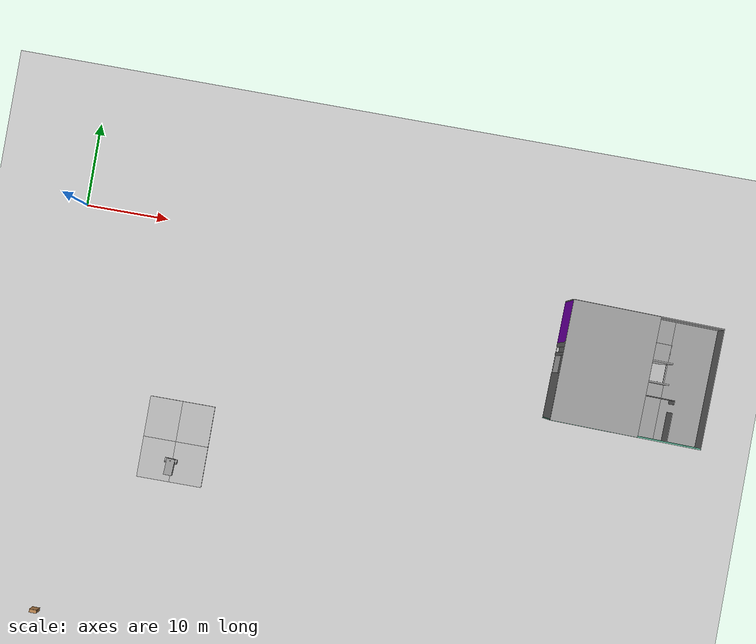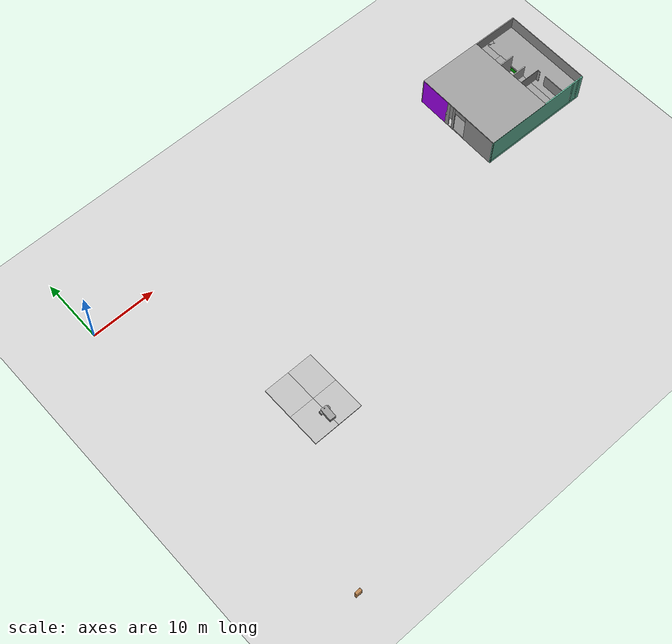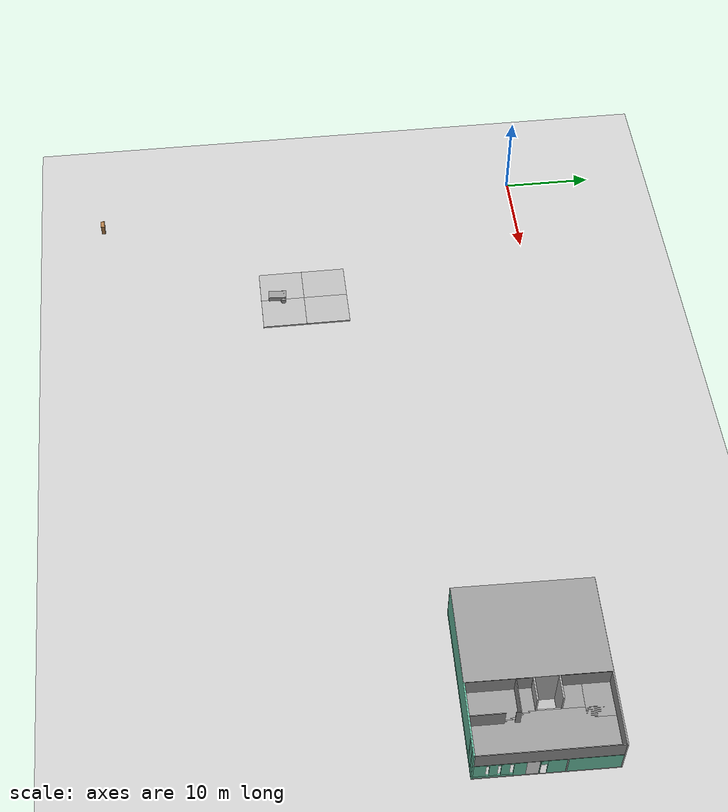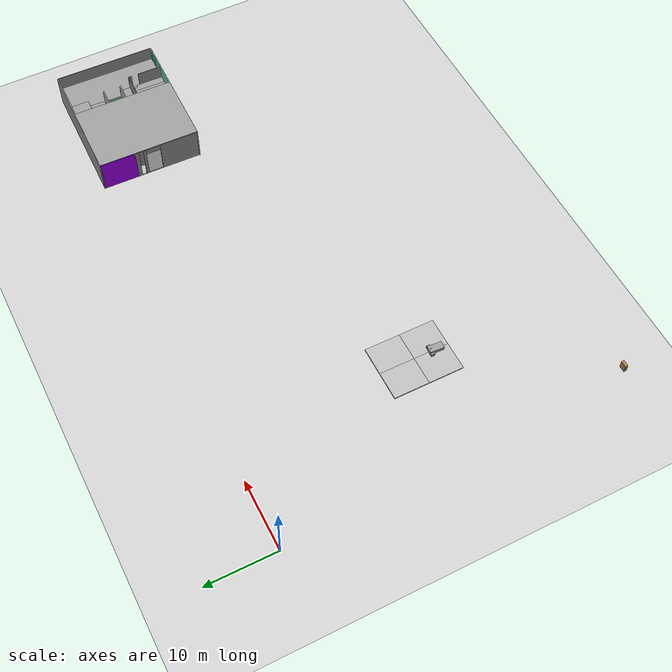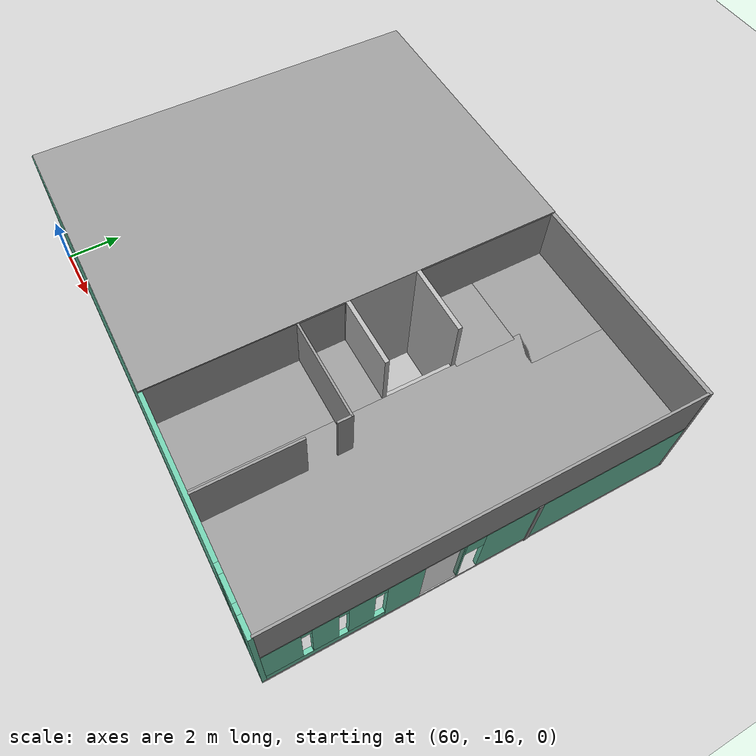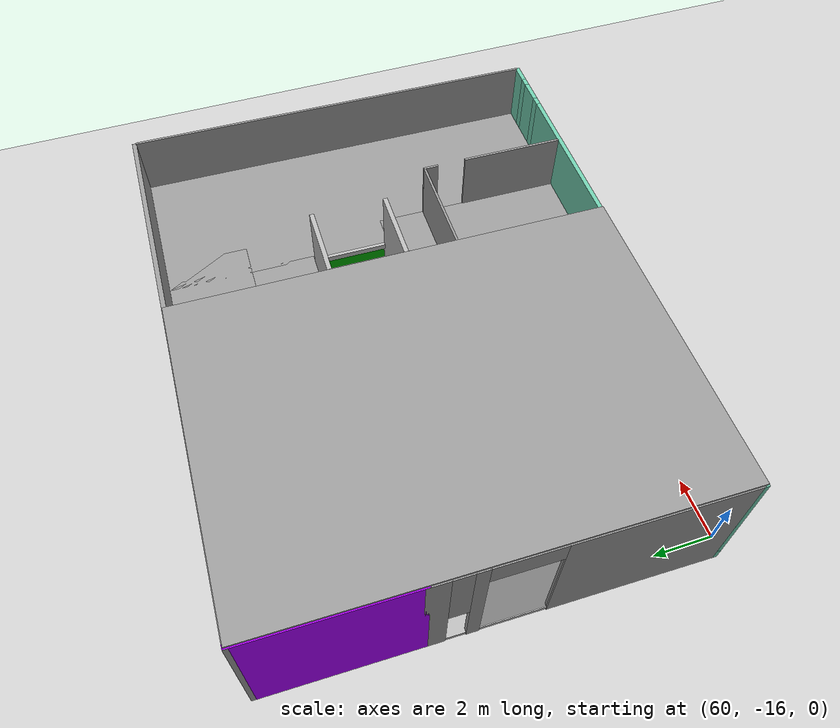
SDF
<sdf version="1.6">
 <world name="default">
  <light name="sun" type="directional">
   <pose>0 0 10 0 -0 0</pose>
   <diffuse>0.8 0.8 0.8 1</diffuse>
   <specular>0.2 0.2 0.2 1</specular>
   <attenuation>
    <range>1000</range>
    <constant>0.9</constant>
    <linear>0.01</linear>
    <quadratic>0.001</quadratic>
   </attenuation>
   <direction>-0.5 0.1 -0.9</direction>
  </light>
  <model name="ground_plane">
   <static>1</static>
   <link name="link">
    <collision name="collision">
     <geometry><plane><normal>0 0 1</normal><size>100 100</size></plane></geometry>
     <surface><friction><ode><mu>100</mu><mu2>50</mu2></ode></friction></surface>
    </collision>
    <visual name="visual">
     <cast_shadows>0</cast_shadows>
     <geometry><plane><normal>0 0 1</normal><size>100 100</size></plane></geometry>
     <material>
      <script><uri>file://media/materials/scripts/gazebo.material</uri><name>Gazebo/Grey</name></script>
     </material>
    </visual>
   </link>
  </model>
  <gravity>0 0 -9.8</gravity>
  <magnetic_field>6e-06 2.3e-05 -4.2e-05</magnetic_field>
  <atmosphere type="adiabatic"/>
  <physics name="default_physics" default="0" type="ode">
   <max_step_size>0.001</max_step_size>
   <real_time_factor>1</real_time_factor>
   <real_time_update_rate>1000</real_time_update_rate>
  </physics>
  <scene><ambient>0.4 0.4 0.4 1</ambient><background>0.7 0.7 0.7 1</background><shadows>1</shadows></scene>
  <audio><device>default</device></audio>
  <spherical_coordinates>
   <surface_model>EARTH_WGS84</surface_model>
   <latitude_deg>0</latitude_deg>
   <longitude_deg>0</longitude_deg>
   <elevation>0</elevation>
   <heading_deg>0</heading_deg>
  </spherical_coordinates>
  <model name="asphalt_plane">
   <static>1</static>
   <link name="link">
    <collision name="collision"><geometry><box><size>6.37484e-06 0 0.1</size></box></geometry></collision>
    <visual name="visual">
     <cast_shadows>0</cast_shadows>
     <geometry><box><size>6.37484e-06 0 0.1</size></box></geometry>
     <material>
      <script>
       <uri>model://asphalt_plane/materials/scripts</uri>
       <uri>model://asphalt_plane/materials/textures</uri>
       <name>vrc/asphalt</name>
      </script>
     </material>
    </visual>
   </link>
   <pose>-4.06776 -4.60958 0 0 -0 0</pose>
  </model>
  <model name="bookshelf">
   <static>1</static>
   <link name="link">
    <inertial><mass>1</mass></inertial>
    <collision name="back">
     <pose>0 0.005 0.6 0 -0 0</pose>
     <geometry><box><size>0.9 0.01 1.2</size></box></geometry>
    </collision>
    <visual name="visual1">
     <pose>0 0.005 0.6 0 -0 0</pose>
     <geometry><box><size>0.9 0.01 1.2</size></box></geometry>
     <material>
      <script><uri>file://media/materials/scripts/gazebo.material</uri><name>Gazebo/Wood</name></script>
     </material>
    </visual>
    <collision name="left_side">
     <pose>0.45 -0.195 0.6 0 -0 0</pose>
     <geometry><box><size>0.02 0.4 1.2</size></box></geometry>
    </collision>
    <visual name="visual2">
     <pose>0.45 -0.195 0.6 0 -0 0</pose>
     <geometry><box><size>0.02 0.4 1.2</size></box></geometry>
     <material>
      <script><uri>file://media/materials/scripts/gazebo.material</uri><name>Gazebo/Wood</name></script>
     </material>
    </visual>
    <collision name="right_side">
     <pose>-0.45 -0.195 0.6 0 -0 0</pose>
     <geometry><box><size>0.02 0.4 1.2</size></box></geometry>
    </collision>
    <visual name="visual3">
     <pose>-0.45 -0.195 0.6 0 -0 0</pose>
     <geometry><box><size>0.02 0.4 1.2</size></box></geometry>
     <material>
      <script><uri>file://media/materials/scripts/gazebo.material</uri><name>Gazebo/Wood</name></script>
     </material>
    </visual>
    <collision name="bottom">
     <pose>0 -0.195 0.03 0 -0 0</pose>
     <geometry><box><size>0.88 0.4 0.06</size></box></geometry>
    </collision>
    <visual name="visual4">
     <pose>0 -0.195 0.03 0 -0 0</pose>
     <geometry><box><size>0.88 0.4 0.06</size></box></geometry>
     <material>
      <script><uri>file://media/materials/scripts/gazebo.material</uri><name>Gazebo/Wood</name></script>
     </material>
    </visual>
    <collision name="top">
     <pose>0 -0.195 1.19 0 -0 0</pose>
     <geometry><box><size>0.88 0.4 0.02</size></box></geometry>
    </collision>
    <visual name="visual5">
     <pose>0 -0.195 1.19 0 -0 0</pose>
     <geometry><box><size>0.88 0.4 0.02</size></box></geometry>
     <material>
      <script><uri>file://media/materials/scripts/gazebo.material</uri><name>Gazebo/Wood</name></script>
     </material>
    </visual>
    <collision name="low_shelf">
     <pose>0 -0.195 0.43 0 -0 0</pose>
     <geometry><box><size>0.88 0.4 0.02</size></box></geometry>
    </collision>
    <visual name="visual6">
     <pose>0 -0.195 0.43 0 -0 0</pose>
     <geometry><box><size>0.88 0.4 0.02</size></box></geometry>
     <material>
      <script><uri>file://media/materials/scripts/gazebo.material</uri><name>Gazebo/Wood</name></script>
     </material>
    </visual>
    <collision name="high_shelf">
     <pose>0 -0.195 0.8 0 -0 0</pose>
     <geometry><box><size>0.88 0.4 0.02</size></box></geometry>
    </collision>
    <visual name="visual7">
     <pose>0 -0.195 0.8 0 -0 0</pose>
     <geometry><box><size>0.88 0.4 0.02</size></box></geometry>
     <material>
      <script><uri>file://media/materials/scripts/gazebo.material</uri><name>Gazebo/Wood</name></script>
     </material>
    </visual>
   </link>
   <pose>2.45 -49.5295 0 0 -0 0</pose>
  </model>
  <model name="follower_vehicle">
   <pose>15.5976 -29.5069 0.425004 0 -1.4e-05 1.52143</pose>
   <link name="chassis">
    <pose>-0.151427 -0 0.175 0 -0 0</pose>
    <inertial>
     <mass>1.14395</mass>
     <inertia>
      <ixx>0.126164</ixx>
      <ixy>0</ixy>
      <ixz>0</ixz>
      <iyy>0.416519</iyy>
      <iyz>0</iyz>
      <izz>0.481014</izz>
     </inertia>
    </inertial>
    <visual name="visual">
     <geometry><box><size>2.01142 1 0.568726</size></box></geometry>
     <material>
      <script><uri>file://media/materials/scripts/gazebo.material</uri><name>Gazebo/Grey</name></script>
     </material>
    </visual>
    <collision name="collision">
     <geometry><box><size>2.01142 1 0.568726</size></box></geometry>
     <surface>
      <friction><ode><mu>1</mu><mu2>1</mu2><fdir1>0 0 0</fdir1><slip1>0</slip1><slip2>0</slip2></ode></friction>
      <bounce><restitution_coefficient>0</restitution_coefficient><threshold>1e+06</threshold></bounce>
      <contact>
       <collide_without_contact>0</collide_without_contact>
       <collide_without_contact_bitmask>1</collide_without_contact_bitmask>
       <collide_bitmask>1</collide_bitmask>
       <ode>
        <soft_cfm>0</soft_cfm>
        <soft_erp>0.2</soft_erp>
        <kp>1e+13</kp>
        <kd>1</kd>
        <max_vel>0.01</max_vel>
        <min_depth>0</min_depth>
       </ode>
      </contact>
     </surface>
    </collision>
   </link>
   <link name="wheel_1">
    <pose>0.554283 0.625029 -0.025 1.5707 -0 0</pose>
    <inertial>
     <mass>2</mass>
     <inertia><ixx>0.145833</ixx><ixy>0</ixy><ixz>0</ixz><iyy>0.145833</iyy><iyz>0</iyz><izz>0.125</izz></inertia>
    </inertial>
    <visual name="visual">
     <geometry><cylinder><radius>0.3</radius><length>0.25</length></cylinder></geometry>
     <material>
      <script><uri>file://media/materials/scripts/gazebo.material</uri><name>Gazebo/Grey</name></script>
     </material>
    </visual>
    <collision name="collision">
     <geometry><cylinder><radius>0.3</radius><length>0.25</length></cylinder></geometry>
     <surface>
      <friction><ode><mu>1</mu><mu2>1</mu2><fdir1>0 0 0</fdir1><slip1>0</slip1><slip2>0</slip2></ode></friction>
      <bounce><restitution_coefficient>0</restitution_coefficient><threshold>1e+06</threshold></bounce>
      <contact>
       <collide_without_contact>0</collide_without_contact>
       <collide_without_contact_bitmask>1</collide_without_contact_bitmask>
       <collide_bitmask>1</collide_bitmask>
       <ode>
        <soft_cfm>0</soft_cfm>
        <soft_erp>0.2</soft_erp>
        <kp>1e+13</kp>
        <kd>1</kd>
        <max_vel>0.01</max_vel>
        <min_depth>0</min_depth>
       </ode>
      </contact>
     </surface>
    </collision>
   </link>
   <link name="wheel_2">
    <pose>0.554282 -0.625029 -0.025 1.5707 -0 0</pose>
    <inertial>
     <mass>2</mass>
     <inertia><ixx>0.145833</ixx><ixy>0</ixy><ixz>0</ixz><iyy>0.145833</iyy><iyz>0</iyz><izz>0.125</izz></inertia>
    </inertial>
    <visual name="visual">
     <geometry><cylinder><radius>0.3</radius><length>0.25</length></cylinder></geometry>
     <material>
      <script><uri>file://media/materials/scripts/gazebo.material</uri><name>Gazebo/Grey</name></script>
     </material>
    </visual>
    <collision name="collision">
     <geometry><cylinder><radius>0.3</radius><length>0.25</length></cylinder></geometry>
     <surface>
      <friction><ode><mu>1</mu><mu2>1</mu2><fdir1>0 0 0</fdir1><slip1>0</slip1><slip2>0</slip2></ode></friction>
      <bounce><restitution_coefficient>0</restitution_coefficient><threshold>1e+06</threshold></bounce>
      <contact>
       <collide_without_contact>0</collide_without_contact>
       <collide_without_contact_bitmask>1</collide_without_contact_bitmask>
       <collide_bitmask>1</collide_bitmask>
       <ode>
        <soft_cfm>0</soft_cfm>
        <soft_erp>0.2</soft_erp>
        <kp>1e+13</kp>
        <kd>1</kd>
        <max_vel>0.01</max_vel>
        <min_depth>0</min_depth>
       </ode>
      </contact>
     </surface>
    </collision>
   </link>
   <link name="caster">
    <pose>-0.957138 -0 -0.125 0 -0 0</pose>
    <inertial>
     <mass>1</mass>
     <inertia><ixx>0.1</ixx><ixy>0</ixy><ixz>0</ixz><iyy>0.1</iyy><iyz>0</iyz><izz>0.1</izz></inertia>
    </inertial>
    <visual name="visual">
     <geometry><sphere><radius>0.2</radius></sphere></geometry>
     <material>
      <script><uri>file://media/materials/scripts/gazebo.material</uri><name>Gazebo/Grey</name></script>
     </material>
    </visual>
    <collision name="collision">
     <geometry><sphere><radius>0.2</radius></sphere></geometry>
     <surface>
      <friction><ode><mu>1</mu><mu2>1</mu2><fdir1>0 0 0</fdir1><slip1>0</slip1><slip2>0</slip2></ode></friction>
      <bounce><restitution_coefficient>0</restitution_coefficient><threshold>1e+06</threshold></bounce>
      <contact>
       <collide_without_contact>0</collide_without_contact>
       <collide_without_contact_bitmask>1</collide_without_contact_bitmask>
       <collide_bitmask>1</collide_bitmask>
       <ode>
        <soft_cfm>0</soft_cfm>
        <soft_erp>0.2</soft_erp>
        <kp>1e+13</kp>
        <kd>1</kd>
        <max_vel>0.01</max_vel>
        <min_depth>0</min_depth>
       </ode>
      </contact>
     </surface>
    </collision>
   </link>
   <model name="depth_camera">
    <link name="link">
     <pose>0.05 0.05 0.05 0 -0 0</pose>
     <inertial>
      <mass>0.1</mass>
      <inertia>
       <ixx>0.000166667</ixx>
       <iyy>0.000166667</iyy>
       <izz>0.000166667</izz>
       <ixy>0</ixy>
       <ixz>0</ixz>
       <iyz>0</iyz>
      </inertia>
     </inertial>
     <collision name="collision"><geometry><box><size>0.1 0.1 0.1</size></box></geometry></collision>
     <visual name="visual"><geometry><box><size>0.1 0.1 0.1</size></box></geometry></visual>
     <sensor name="camera" type="depth">
      <camera name="depth">
       <horizontal_fov>1.047</horizontal_fov>
       <image><width>320</width><height>240</height></image>
       <clip><near>0.1</near><far>100</far></clip>
      </camera>
      <always_on>1</always_on>
      <update_rate>30</update_rate>
      <visualize>1</visualize>
     </sensor>
    </link>
    <pose>0.569632 -0.03223 0.502056 0 -0 0</pose>
   </model>
   <joint name="chassis_wheel_1_revolute" type="revolute">
    <parent>chassis</parent>
    <child>wheel_1</child>
    <axis>
     <xyz>0 0 1</xyz>
     <use_parent_model_frame>0</use_parent_model_frame>
     <limit>
      <lower>-1.79769e+308</lower>
      <upper>1.79769e+308</upper>
      <effort>-1</effort>
      <velocity>-1</velocity>
     </limit>
     <dynamics>
      <spring_reference>0</spring_reference>
      <spring_stiffness>0</spring_stiffness>
      <damping>0</damping>
      <friction>0</friction>
     </dynamics>
    </axis>
    <physics>
     <ode><limit><cfm>0</cfm><erp>0.2</erp></limit><suspension><cfm>0</cfm><erp>0.2</erp></suspension></ode>
    </physics>
   </joint>
   <joint name="chassis_wheel_2_revolute" type="revolute">
    <parent>chassis</parent>
    <child>wheel_2</child>
    <axis>
     <xyz>0 0 1</xyz>
     <use_parent_model_frame>0</use_parent_model_frame>
     <limit>
      <lower>-1.79769e+308</lower>
      <upper>1.79769e+308</upper>
      <effort>-1</effort>
      <velocity>-1</velocity>
     </limit>
     <dynamics>
      <spring_reference>0</spring_reference>
      <spring_stiffness>0</spring_stiffness>
      <damping>0</damping>
      <friction>0</friction>
     </dynamics>
    </axis>
    <physics>
     <ode><limit><cfm>0</cfm><erp>0.2</erp></limit><suspension><cfm>0</cfm><erp>0.2</erp></suspension></ode>
    </physics>
   </joint>
   <joint name="chassis_caster_ball" type="ball">
    <parent>chassis</parent>
    <child>caster</child>
    <physics>
     <ode><limit><cfm>0</cfm><erp>0.2</erp></limit><suspension><cfm>0</cfm><erp>0.2</erp></suspension></ode>
    </physics>
   </joint>
   <joint name="chassis_depth_camera_link_fixed" type="fixed">
    <parent>chassis</parent>
    <child>depth_camera::link</child>
    <physics>
     <ode><limit><cfm>0</cfm><erp>0.2</erp></limit><suspension><cfm>0</cfm><erp>0.2</erp></suspension></ode>
    </physics>
   </joint>
   <static>0</static>
   <plugin name="follower" filename="libFollowerPlugin.so"/>
  </model>
  <model name="mud_box">
   <static>1</static>
   <link name="link">
    <collision name="collision"><geometry><box><size>8 10 0.2</size></box></geometry></collision>
    <visual name="visual_1">
     <pose>-2 2.5 0 0 -0 0</pose>
     <cast_shadows>0</cast_shadows>
     <geometry><box><size>4 5 0.2</size></box></geometry>
     <material>
      <script>
       <uri>model://mud_box/materials/scripts</uri>
       <uri>model://mud_box/materials/textures</uri>
       <name>vrc/mud</name>
      </script>
     </material>
    </visual>
    <visual name="visual_2">
     <pose>2 2.5 0 0 -0 0</pose>
     <cast_shadows>0</cast_shadows>
     <geometry><box><size>4 5 0.2</size></box></geometry>
     <material>
      <script>
       <uri>model://mud_box/materials/scripts</uri>
       <uri>model://mud_box/materials/textures</uri>
       <name>vrc/mud</name>
      </script>
     </material>
    </visual>
    <visual name="visual_3">
     <pose>2 -2.5 0 0 -0 0</pose>
     <cast_shadows>0</cast_shadows>
     <geometry><box><size>4 5 0.2</size></box></geometry>
     <material>
      <script>
       <uri>model://mud_box/materials/scripts</uri>
       <uri>model://mud_box/materials/textures</uri>
       <name>vrc/mud</name>
      </script>
     </material>
    </visual>
    <visual name="visual_4">
     <pose>-2 -2.5 0 0 -0 0</pose>
     <cast_shadows>0</cast_shadows>
     <geometry><box><size>4 5 0.2</size></box></geometry>
     <material>
      <script>
       <uri>model://mud_box/materials/scripts</uri>
       <uri>model://mud_box/materials/textures</uri>
       <name>vrc/mud</name>
      </script>
     </material>
    </visual>
   </link>
   <pose>15.7215 -26.5767 0 0 -0 0</pose>
  </model>
  <model name="osrf_elevator">
   <link name="Wall_0">
    <pose>-7.17647 0.013004 0 0 -0 1.57174</pose>
    <visual name="Wall_0_Visual_0">
     <meta><layer>0</layer></meta>
     <pose>-8.72596 0 2.4385 0 -0 0</pose>
     <geometry><box><size>0.663656 0.15 4.877</size></box></geometry>
     <material>
      <script><uri>file://media/materials/scripts/gazebo.material</uri><name>Gazebo/Grey</name></script>
      <ambient>0.435294 0.796078 0.67451 1</ambient>
     </material>
    </visual>
    <collision name="Wall_0_Collision_0">
     <geometry><box><size>0.663656 0.15 4.877</size></box></geometry>
     <pose>-8.72596 0 2.4385 0 -0 0</pose>
    </collision>
    <visual name="Wall_0_Visual_1">
     <meta><layer>0</layer></meta>
     <pose>0.331828 0 0.25 0 -0 0</pose>
     <geometry><box><size>17.4519 0.15 0.5</size></box></geometry>
     <material>
      <script><uri>file://media/materials/scripts/gazebo.material</uri><name>Gazebo/Grey</name></script>
      <ambient>0.435294 0.796078 0.67451 1</ambient>
     </material>
    </visual>
    <collision name="Wall_0_Collision_1">
     <geometry><box><size>17.4519 0.15 0.5</size></box></geometry>
     <pose>0.331828 0 0.25 0 -0 0</pose>
    </collision>
    <visual name="Wall_0_Visual_2">
     <meta><layer>0</layer></meta>
     <pose>-7.67281 0 2.6885 0 -0 0</pose>
     <geometry><box><size>0.816657 0.15 4.377</size></box></geometry>
     <material>
      <script><uri>file://media/materials/scripts/gazebo.material</uri><name>Gazebo/Grey</name></script>
      <ambient>0.435294 0.796078 0.67451 1</ambient>
     </material>
    </visual>
    <collision name="Wall_0_Collision_2">
     <geometry><box><size>0.816657 0.15 4.377</size></box></geometry>
     <pose>-7.67281 0 2.6885 0 -0 0</pose>
    </collision>
    <visual name="Wall_0_Visual_3">
     <meta><layer>0</layer></meta>
     <pose>1.05709 0 2.6885 0 -0 0</pose>
     <geometry><box><size>16.0014 0.15 4.377</size></box></geometry>
     <material>
      <script><uri>file://media/materials/scripts/gazebo.material</uri><name>Gazebo/Grey</name></script>
      <ambient>0.435294 0.796078 0.67451 1</ambient>
     </material>
    </visual>
    <collision name="Wall_0_Collision_3">
     <geometry><box><size>16.0014 0.15 4.377</size></box></geometry>
     <pose>1.05709 0 2.6885 0 -0 0</pose>
    </collision>
    <visual name="Wall_0_Visual_4">
     <meta><layer>0</layer></meta>
     <pose>-8.23763 0 3.6885 0 -0 0</pose>
     <geometry><box><size>0.313 0.15 2.377</size></box></geometry>
     <material>
      <script><uri>file://media/materials/scripts/gazebo.material</uri><name>Gazebo/Grey</name></script>
      <ambient>0.435294 0.796078 0.67451 1</ambient>
     </material>
    </visual>
    <collision name="Wall_0_Collision_4">
     <geometry><box><size>0.313 0.15 2.377</size></box></geometry>
     <pose>-8.23763 0 3.6885 0 -0 0</pose>
    </collision>
    <visual name="Wall_0_Visual_5">
     <meta><layer>0</layer></meta>
     <pose>-7.10405 0 3.6885 0 -0 0</pose>
     <geometry><box><size>0.320861 0.15 2.377</size></box></geometry>
     <material>
      <script><uri>file://media/materials/scripts/gazebo.material</uri><name>Gazebo/Grey</name></script>
      <ambient>0.435294 0.796078 0.67451 1</ambient>
     </material>
    </visual>
    <collision name="Wall_0_Collision_5">
     <geometry><box><size>0.320861 0.15 2.377</size></box></geometry>
     <pose>-7.10405 0 3.6885 0 -0 0</pose>
    </collision>
   </link>
   <link name="Wall_10">
    <pose>3.11003 -4.9485 0 0 -0 0</pose>
    <visual name="Wall_10_Visual_0">
     <meta><layer>0</layer></meta>
     <pose>-1.73626 0 1.3715 0 -0 0</pose>
     <geometry><box><size>4.52747 0.15 2.743</size></box></geometry>
     <material>
      <script><uri>file://media/materials/scripts/gazebo.material</uri><name>Gazebo/Grey</name></script>
      <ambient>0 0.666667 0 1</ambient>
     </material>
    </visual>
    <collision name="Wall_10_Collision_0">
     <geometry><box><size>4.52747 0.15 2.743</size></box></geometry>
     <pose>-1.73626 0 1.3715 0 -0 0</pose>
    </collision>
    <visual name="Wall_10_Visual_1">
     <meta><layer>0</layer></meta>
     <pose>2.58694 0 1.3715 0 -0 0</pose>
     <geometry><box><size>2.82611 0.15 2.743</size></box></geometry>
     <material>
      <script><uri>file://media/materials/scripts/gazebo.material</uri><name>Gazebo/Grey</name></script>
      <ambient>0 0.666667 0 1</ambient>
     </material>
    </visual>
    <collision name="Wall_10_Collision_1">
     <geometry><box><size>2.82611 0.15 2.743</size></box></geometry>
     <pose>2.58694 0 1.3715 0 -0 0</pose>
    </collision>
    <visual name="Wall_10_Visual_2">
     <meta><layer>0</layer></meta>
     <pose>0.85068 0 2.3715 0 -0 0</pose>
     <geometry><box><size>0.646413 0.15 0.743</size></box></geometry>
     <material>
      <script><uri>file://media/materials/scripts/gazebo.material</uri><name>Gazebo/Grey</name></script>
      <ambient>0 0.666667 0 1</ambient>
     </material>
    </visual>
    <collision name="Wall_10_Collision_2">
     <geometry><box><size>0.646413 0.15 0.743</size></box></geometry>
     <pose>0.85068 0 2.3715 0 -0 0</pose>
    </collision>
   </link>
   <link name="Wall_14">
    <pose>1.83803 -6.9775 0 0 -0 1.5708</pose>
    <visual name="Wall_14_Visual_0">
     <meta><layer>0</layer></meta>
     <pose>-0.387674 0 1.3715 0 -0 0</pose>
     <geometry><box><size>3.41138 0.15 2.743</size></box></geometry>
     <material>
      <script><uri>file://media/materials/scripts/gazebo.material</uri><name>Gazebo/Grey</name></script>
      <ambient>1 1 1 1</ambient>
     </material>
    </visual>
    <collision name="Wall_14_Collision_0">
     <geometry><box><size>3.41138 0.15 2.743</size></box></geometry>
     <pose>-0.387674 0 1.3715 0 -0 0</pose>
    </collision>
    <visual name="Wall_14_Visual_1">
     <meta><layer>0</layer></meta>
     <pose>2.00133 0 1.3715 0 -0 0</pose>
     <geometry><box><size>0.184063 0.15 2.743</size></box></geometry>
     <material>
      <script><uri>file://media/materials/scripts/gazebo.material</uri><name>Gazebo/Grey</name></script>
      <ambient>1 1 1 1</ambient>
     </material>
    </visual>
    <collision name="Wall_14_Collision_1">
     <geometry><box><size>0.184063 0.15 2.743</size></box></geometry>
     <pose>2.00133 0 1.3715 0 -0 0</pose>
    </collision>
    <visual name="Wall_14_Visual_2">
     <meta><layer>0</layer></meta>
     <pose>1.61366 0 2.3715 0 -0 0</pose>
     <geometry><box><size>0.591285 0.15 0.743</size></box></geometry>
     <material>
      <script><uri>file://media/materials/scripts/gazebo.material</uri><name>Gazebo/Grey</name></script>
      <ambient>1 1 1 1</ambient>
     </material>
    </visual>
    <collision name="Wall_14_Collision_2">
     <geometry><box><size>0.591285 0.15 0.743</size></box></geometry>
     <pose>1.61366 0 2.3715 0 -0 0</pose>
    </collision>
   </link>
   <link name="Wall_16">
    <collision name="Wall_16_Collision">
     <geometry><box><size>5.12727 0.15 2.743</size></box></geometry>
     <pose>0 0 1.3715 0 -0 0</pose>
    </collision>
    <visual name="Wall_16_Visual">
     <meta><layer>0</layer></meta>
     <pose>0 0 1.3715 0 -0 0</pose>
     <geometry><box><size>5.12727 0.15 2.743</size></box></geometry>
     <material>
      <script><uri>file://media/materials/scripts/gazebo.material</uri><name>Gazebo/Grey</name></script>
      <ambient>1 1 1 1</ambient>
     </material>
    </visual>
    <pose>-4.68247 -1.4425 0 0 -0 0</pose>
   </link>
   <link name="Wall_17">
    <pose>-2.19097 -3.185 0 0 0 -1.56907</pose>
    <visual name="Wall_17_Visual_0">
     <meta><layer>0</layer></meta>
     <pose>-1.22855 0 1.3715 0 -0 0</pose>
     <geometry><box><size>1.17851 0.15 2.743</size></box></geometry>
     <material>
      <script><uri>file://media/materials/scripts/gazebo.material</uri><name>Gazebo/Grey</name></script>
      <ambient>1 1 1 1</ambient>
     </material>
    </visual>
    <collision name="Wall_17_Collision_0">
     <geometry><box><size>1.17851 0.15 2.743</size></box></geometry>
     <pose>-1.22855 0 1.3715 0 -0 0</pose>
    </collision>
    <visual name="Wall_17_Visual_1">
     <meta><layer>0</layer></meta>
     <pose>0.886237 0 1.3715 0 -0 0</pose>
     <geometry><box><size>1.86314 0.15 2.743</size></box></geometry>
     <material>
      <script><uri>file://media/materials/scripts/gazebo.material</uri><name>Gazebo/Grey</name></script>
      <ambient>1 1 1 1</ambient>
     </material>
    </visual>
    <collision name="Wall_17_Collision_1">
     <geometry><box><size>1.86314 0.15 2.743</size></box></geometry>
     <pose>0.886237 0 1.3715 0 -0 0</pose>
    </collision>
    <visual name="Wall_17_Visual_2">
     <meta><layer>0</layer></meta>
     <pose>1.18873 0 1.3715 0 -0 0</pose>
     <geometry><box><size>1.25815 0.15 2.743</size></box></geometry>
     <material>
      <script><uri>file://media/materials/scripts/gazebo.material</uri><name>Gazebo/Grey</name></script>
      <ambient>1 1 1 1</ambient>
     </material>
    </visual>
    <collision name="Wall_17_Collision_2">
     <geometry><box><size>1.25815 0.15 2.743</size></box></geometry>
     <pose>1.18873 0 1.3715 0 -0 0</pose>
    </collision>
    <visual name="Wall_17_Visual_3">
     <meta><layer>0</layer></meta>
     <pose>-0.345304 0 2.3715 0 -0 0</pose>
     <geometry><box><size>0.587991 0.15 0.743</size></box></geometry>
     <material>
      <script><uri>file://media/materials/scripts/gazebo.material</uri><name>Gazebo/Grey</name></script>
      <ambient>1 1 1 1</ambient>
     </material>
    </visual>
    <collision name="Wall_17_Collision_3">
     <geometry><box><size>0.587991 0.15 0.743</size></box></geometry>
     <pose>-0.345304 0 2.3715 0 -0 0</pose>
    </collision>
   </link>
   <link name="Wall_18">
    <collision name="Wall_18_Collision">
     <geometry><box><size>5 0.15 2.743</size></box></geometry>
     <pose>0 0 1.3715 0 -0 0</pose>
    </collision>
    <visual name="Wall_18_Visual">
     <meta><layer>0</layer></meta>
     <pose>0 0 1.3715 0 -0 0</pose>
     <geometry><box><size>5 0.15 2.743</size></box></geometry>
     <material>
      <script><uri>file://media/materials/scripts/gazebo.material</uri><name>Gazebo/Grey</name></script>
      <ambient>1 1 1 1</ambient>
     </material>
    </visual>
    <pose>-4.61297 -4.9275 0 0 -0 3.14159</pose>
   </link>
   <link name="Wall_20">
    <collision name="Wall_20_Collision">
     <geometry><box><size>2.88731 0.15 2.743</size></box></geometry>
     <pose>0 0 1.3715 0 -0 0</pose>
    </collision>
    <visual name="Wall_20_Visual">
     <meta><layer>0</layer></meta>
     <pose>0 0 1.3715 0 -0 0</pose>
     <geometry><box><size>2.88731 0.15 2.743</size></box></geometry>
     <material>
      <script><uri>file://media/materials/scripts/gazebo.material</uri><name>Gazebo/Grey</name></script>
      <ambient>1 1 1 1</ambient>
     </material>
    </visual>
    <pose>5.74253 1.037 0 0 0 -3.1383</pose>
   </link>
   <link name="Wall_21">
    <pose>4.37403 -1.8925 0 0 0 -1.5708</pose>
    <visual name="Wall_21_Visual_0">
     <meta><layer>0</layer></meta>
     <pose>-2.34405 0 1.3715 0 -0 0</pose>
     <geometry><box><size>1.3119 0.15 2.743</size></box></geometry>
     <material>
      <script><uri>file://media/materials/scripts/gazebo.material</uri><name>Gazebo/Grey</name></script>
      <ambient>1 1 1 1</ambient>
     </material>
    </visual>
    <collision name="Wall_21_Collision_0">
     <geometry><box><size>1.3119 0.15 2.743</size></box></geometry>
     <pose>-2.34405 0 1.3715 0 -0 0</pose>
    </collision>
    <visual name="Wall_21_Visual_1">
     <meta><layer>0</layer></meta>
     <pose>-0.970323 0 1.3715 0 -0 0</pose>
     <geometry><box><size>0.213619 0.15 2.743</size></box></geometry>
     <material>
      <script><uri>file://media/materials/scripts/gazebo.material</uri><name>Gazebo/Grey</name></script>
      <ambient>1 1 1 1</ambient>
     </material>
    </visual>
    <collision name="Wall_21_Collision_1">
     <geometry><box><size>0.213619 0.15 2.743</size></box></geometry>
     <pose>-0.970323 0 1.3715 0 -0 0</pose>
    </collision>
    <visual name="Wall_21_Visual_2">
     <meta><layer>0</layer></meta>
     <pose>0.938748 0 1.3715 0 -0 0</pose>
     <geometry><box><size>2.36558 0.15 2.743</size></box></geometry>
     <material>
      <script><uri>file://media/materials/scripts/gazebo.material</uri><name>Gazebo/Grey</name></script>
      <ambient>1 1 1 1</ambient>
     </material>
    </visual>
    <collision name="Wall_21_Collision_2">
     <geometry><box><size>2.36558 0.15 2.743</size></box></geometry>
     <pose>0.938748 0 1.3715 0 -0 0</pose>
    </collision>
    <visual name="Wall_21_Visual_3">
     <meta><layer>0</layer></meta>
     <pose>2.89346 0 1.3715 0 -0 0</pose>
     <geometry><box><size>0.213086 0.15 2.743</size></box></geometry>
     <material>
      <script><uri>file://media/materials/scripts/gazebo.material</uri><name>Gazebo/Grey</name></script>
      <ambient>1 1 1 1</ambient>
     </material>
    </visual>
    <collision name="Wall_21_Collision_3">
     <geometry><box><size>0.213086 0.15 2.743</size></box></geometry>
     <pose>2.89346 0 1.3715 0 -0 0</pose>
    </collision>
    <visual name="Wall_21_Visual_4">
     <meta><layer>0</layer></meta>
     <pose>-1.38262 0 2.3715 0 -0 0</pose>
     <geometry><box><size>0.610969 0.15 0.743</size></box></geometry>
     <material>
      <script><uri>file://media/materials/scripts/gazebo.material</uri><name>Gazebo/Grey</name></script>
      <ambient>1 1 1 1</ambient>
     </material>
    </visual>
    <collision name="Wall_21_Collision_4">
     <geometry><box><size>0.610969 0.15 0.743</size></box></geometry>
     <pose>-1.38262 0 2.3715 0 -0 0</pose>
    </collision>
    <visual name="Wall_21_Visual_5">
     <meta><layer>0</layer></meta>
     <pose>-0.553779 0 2.3715 0 -0 0</pose>
     <geometry><box><size>0.61947 0.15 0.743</size></box></geometry>
     <material>
      <script><uri>file://media/materials/scripts/gazebo.material</uri><name>Gazebo/Grey</name></script>
      <ambient>1 1 1 1</ambient>
     </material>
    </visual>
    <collision name="Wall_21_Collision_5">
     <geometry><box><size>0.61947 0.15 0.743</size></box></geometry>
     <pose>-0.553779 0 2.3715 0 -0 0</pose>
    </collision>
    <visual name="Wall_21_Visual_6">
     <meta><layer>0</layer></meta>
     <pose>2.45423 0 2.3715 0 -0 0</pose>
     <geometry><box><size>0.665375 0.15 0.743</size></box></geometry>
     <material>
      <script><uri>file://media/materials/scripts/gazebo.material</uri><name>Gazebo/Grey</name></script>
      <ambient>1 1 1 1</ambient>
     </material>
    </visual>
    <collision name="Wall_21_Collision_6">
     <geometry><box><size>0.665375 0.15 0.743</size></box></geometry>
     <pose>2.45423 0 2.3715 0 -0 0</pose>
    </collision>
   </link>
   <link name="Wall_23">
    <collision name="Wall_23_Collision">
     <geometry><box><size>2.75 0.15 2.743</size></box></geometry>
     <pose>0 0 1.3715 0 -0 0</pose>
    </collision>
    <visual name="Wall_23_Visual">
     <meta><layer>0</layer></meta>
     <pose>0 0 1.3715 0 -0 0</pose>
     <geometry><box><size>2.75 0.15 2.743</size></box></geometry>
     <material>
      <script><uri>file://media/materials/scripts/gazebo.material</uri><name>Gazebo/Grey</name></script>
      <ambient>1 1 1 1</ambient>
     </material>
    </visual>
    <pose>5.74203 -2.9565 0 0 -0 0</pose>
   </link>
   <link name="Wall_25">
    <collision name="Wall_25_Collision">
     <geometry><box><size>2.75 0.15 2.743</size></box></geometry>
     <pose>0 0 1.3715 0 -0 0</pose>
    </collision>
    <visual name="Wall_25_Visual">
     <meta><layer>0</layer></meta>
     <pose>0 0 1.3715 0 -0 0</pose>
     <geometry><box><size>2.75 0.15 2.743</size></box></geometry>
     <material>
      <script><uri>file://media/materials/scripts/gazebo.material</uri><name>Gazebo/Grey</name></script>
      <ambient>1 1 1 1</ambient>
     </material>
    </visual>
    <pose>5.76203 -0.932496 0 0 -0 0</pose>
   </link>
   <link name="Wall_27">
    <collision name="Wall_27_Collision">
     <geometry><box><size>4 0.15 2.743</size></box></geometry>
     <pose>0 0 1.3715 0 -0 0</pose>
    </collision>
    <visual name="Wall_27_Visual">
     <meta><layer>0</layer></meta>
     <pose>0 0 1.3715 0 -0 0</pose>
     <geometry><box><size>4 0.15 2.743</size></box></geometry>
     <material>
      <script><uri>file://media/materials/scripts/gazebo.material</uri><name>Gazebo/Grey</name></script>
      <ambient>1 1 1 1</ambient>
     </material>
    </visual>
    <pose>4.75503 -7.0125 0 0 -0 1.5708</pose>
   </link>
   <link name="Wall_29">
    <collision name="Wall_29_Collision">
     <geometry><box><size>1.39187 0.15 4.877</size></box></geometry>
     <pose>0 0 2.4385 0 -0 0</pose>
    </collision>
    <visual name="Wall_29_Visual">
     <meta><layer>0</layer></meta>
     <pose>0 0 2.4385 0 -0 0</pose>
     <geometry><box><size>1.39187 0.15 4.877</size></box></geometry>
     <material>
      <script><uri>file://media/materials/scripts/gazebo.material</uri><name>Gazebo/Grey</name></script>
      <ambient>0.996078 0.47451 0.0196078 1</ambient>
     </material>
    </visual>
    <pose>-6.49697 4.1045 0 0 -0 0</pose>
   </link>
   <link name="Wall_30">
    <collision name="Wall_30_Collision">
     <geometry><box><size>3 0.15 4.877</size></box></geometry>
     <pose>0 0 2.4385 0 -0 0</pose>
    </collision>
    <visual name="Wall_30_Visual">
     <meta><layer>0</layer></meta>
     <pose>0 0 2.4385 0 -0 0</pose>
     <geometry><box><size>3 0.15 4.877</size></box></geometry>
     <material>
      <script><uri>file://media/materials/scripts/gazebo.material</uri><name>Gazebo/Grey</name></script>
      <ambient>1 1 1 1</ambient>
     </material>
    </visual>
    <pose>-5.87597 5.5295 0 0 -0 1.5708</pose>
   </link>
   <link name="Wall_31">
    <pose>-6.50397 6.9525 0 0 0 -3.13841</pose>
    <visual name="Wall_31_Visual_0">
     <meta><layer>0</layer></meta>
     <pose>-0.567544 0 2.4385 0 -0 0</pose>
     <geometry><box><size>0.271575 0.15 4.877</size></box></geometry>
     <material>
      <script><uri>file://media/materials/scripts/gazebo.material</uri><name>Gazebo/Grey</name></script>
      <ambient>1 1 1 1</ambient>
     </material>
    </visual>
    <collision name="Wall_31_Collision_0">
     <geometry><box><size>0.271575 0.15 4.877</size></box></geometry>
     <pose>-0.567544 0 2.4385 0 -0 0</pose>
    </collision>
    <visual name="Wall_31_Visual_1">
     <meta><layer>0</layer></meta>
     <pose>0.441678 0 2.4385 0 -0 0</pose>
     <geometry><box><size>0.523307 0.15 4.877</size></box></geometry>
     <material>
      <script><uri>file://media/materials/scripts/gazebo.material</uri><name>Gazebo/Grey</name></script>
      <ambient>1 1 1 1</ambient>
     </material>
    </visual>
    <collision name="Wall_31_Collision_1">
     <geometry><box><size>0.523307 0.15 4.877</size></box></geometry>
     <pose>0.441678 0 2.4385 0 -0 0</pose>
    </collision>
    <visual name="Wall_31_Visual_3">
     <meta><layer>0</layer></meta>
     <pose>-0.125866 0 3.4385 0 -0 0</pose>
     <geometry><box><size>0.611781 0.15 2.877</size></box></geometry>
     <material>
      <script><uri>file://media/materials/scripts/gazebo.material</uri><name>Gazebo/Grey</name></script>
      <ambient>1 1 1 1</ambient>
     </material>
    </visual>
    <collision name="Wall_31_Collision_3">
     <geometry><box><size>0.611781 0.15 2.877</size></box></geometry>
     <pose>-0.125866 0 3.4385 0 -0 0</pose>
    </collision>
   </link>
   <link name="Wall_35">
    <pose>-2.50997 8.9955 0 0 -0 0</pose>
    <visual name="Wall_35_Visual_0">
     <meta><layer>0</layer></meta>
     <pose>-1.92197 0 2.4385 0 -0 0</pose>
     <geometry><box><size>5.65606 0.15 4.877</size></box></geometry>
     <material>
      <script><uri>file://media/materials/scripts/gazebo.material</uri><name>Gazebo/Grey</name></script>
      <ambient>1 1 1 1</ambient>
     </material>
    </visual>
    <collision name="Wall_35_Collision_0">
     <geometry><box><size>5.65606 0.15 4.877</size></box></geometry>
     <pose>-1.92197 0 2.4385 0 -0 0</pose>
    </collision>
    <visual name="Wall_35_Visual_1">
     <meta><layer>0</layer></meta>
     <pose>3.22541 0 2.4385 0 -0 0</pose>
     <geometry><box><size>0.406701 0.15 4.877</size></box></geometry>
     <material>
      <script><uri>file://media/materials/scripts/gazebo.material</uri><name>Gazebo/Grey</name></script>
      <ambient>1 1 1 1</ambient>
     </material>
    </visual>
    <collision name="Wall_35_Collision_1">
     <geometry><box><size>0.406701 0.15 4.877</size></box></geometry>
     <pose>3.22541 0 2.4385 0 -0 0</pose>
    </collision>
    <visual name="Wall_35_Visual_2">
     <meta><layer>0</layer></meta>
     <pose>4.40208 0 2.4385 0 -0 0</pose>
     <geometry><box><size>0.695843 0.15 4.877</size></box></geometry>
     <material>
      <script><uri>file://media/materials/scripts/gazebo.material</uri><name>Gazebo/Grey</name></script>
      <ambient>1 1 1 1</ambient>
     </material>
    </visual>
    <collision name="Wall_35_Collision_2">
     <geometry><box><size>0.695843 0.15 4.877</size></box></geometry>
     <pose>4.40208 0 2.4385 0 -0 0</pose>
    </collision>
    <visual name="Wall_35_Visual_5">
     <meta><layer>0</layer></meta>
     <pose>3.74146 0 3.4385 0 -0 0</pose>
     <geometry><box><size>0.625391 0.15 2.877</size></box></geometry>
     <material>
      <script><uri>file://media/materials/scripts/gazebo.material</uri><name>Gazebo/Grey</name></script>
      <ambient>1 1 1 1</ambient>
     </material>
    </visual>
    <collision name="Wall_35_Collision_5">
     <geometry><box><size>0.625391 0.15 2.877</size></box></geometry>
     <pose>3.74146 0 3.4385 0 -0 0</pose>
    </collision>
    <visual name="Wall_35_Visual_6">
     <meta><layer>0</layer></meta>
     <pose>1.96406 0 4.4385 0 -0 0</pose>
     <geometry><box><size>2.116 0.15 0.877</size></box></geometry>
     <material>
      <script><uri>file://media/materials/scripts/gazebo.material</uri><name>Gazebo/Grey</name></script>
      <ambient>1 1 1 1</ambient>
     </material>
    </visual>
    <collision name="Wall_35_Collision_6">
     <geometry><box><size>2.116 0.15 0.877</size></box></geometry>
     <pose>1.96406 0 4.4385 0 -0 0</pose>
    </collision>
   </link>
   <link name="Wall_36">
    <collision name="Wall_36_Collision">
     <geometry><box><size>5.17 0.15 4.877</size></box></geometry>
     <pose>0 0 2.4385 0 -0 0</pose>
    </collision>
    <visual name="Wall_36_Visual">
     <meta><layer>0</layer></meta>
     <pose>0 0 2.4385 0 -0 0</pose>
     <geometry><box><size>5.17 0.15 4.877</size></box></geometry>
     <material>
      <script><uri>file://media/materials/scripts/gazebo.material</uri><name>Gazebo/Grey</name></script>
      <ambient>0.666667 0 1 1</ambient>
     </material>
    </visual>
    <pose>4.67503 8.9955 0 0 -0 0</pose>
   </link>
   <link name="Wall_5">
    <collision name="Wall_5_Collision">
     <geometry><box><size>18.1152 0.15 4.877</size></box></geometry>
     <pose>0 0 2.4385 0 -0 0</pose>
    </collision>
    <visual name="Wall_5_Visual">
     <meta><layer>0</layer></meta>
     <pose>0 0 2.4385 0 -0 0</pose>
     <geometry><box><size>18.1152 0.15 4.877</size></box></geometry>
     <material>
      <script><uri>file://media/materials/scripts/gazebo.material</uri><name>Gazebo/Grey</name></script>
      <ambient>1 1 1 1</ambient>
     </material>
    </visual>
    <pose>7.18353 0.013004 0 0 0 -1.57096</pose>
   </link>
   <link name="Wall_6">
    <pose>0.007029 -8.9695 0 0 -0 3.14159</pose>
    <visual name="Wall_6_Visual_0">
     <meta><layer>0</layer></meta>
     <pose>-3.60425 0 1.365 0 -0 0</pose>
     <geometry><box><size>7.2915 0.15 2.73</size></box></geometry>
     <material>
      <script><uri>file://media/materials/scripts/gazebo.material</uri><name>Gazebo/Grey</name></script>
      <ambient>0.435294 0.796078 0.67451 1</ambient>
     </material>
    </visual>
    <collision name="Wall_6_Collision_0">
     <geometry><box><size>7.2915 0.15 2.73</size></box></geometry>
     <pose>-3.60425 0 1.365 0 -0 0</pose>
    </collision>
    <visual name="Wall_6_Visual_1">
     <meta><layer>0</layer></meta>
     <pose>0.726241 0 1.365 0 -0 0</pose>
     <geometry><box><size>0.056893 0.15 2.73</size></box></geometry>
     <material>
      <script><uri>file://media/materials/scripts/gazebo.material</uri><name>Gazebo/Grey</name></script>
      <ambient>0.435294 0.796078 0.67451 1</ambient>
     </material>
    </visual>
    <collision name="Wall_6_Collision_1">
     <geometry><box><size>0.056893 0.15 2.73</size></box></geometry>
     <pose>0.726241 0 1.365 0 -0 0</pose>
    </collision>
    <visual name="Wall_6_Visual_2">
     <meta><layer>0</layer></meta>
     <pose>2.65105 0 1.365 0 -0 0</pose>
     <geometry><box><size>1.19273 0.15 2.73</size></box></geometry>
     <material>
      <script><uri>file://media/materials/scripts/gazebo.material</uri><name>Gazebo/Grey</name></script>
      <ambient>0.435294 0.796078 0.67451 1</ambient>
     </material>
    </visual>
    <collision name="Wall_6_Collision_2">
     <geometry><box><size>1.19273 0.15 2.73</size></box></geometry>
     <pose>2.65105 0 1.365 0 -0 0</pose>
    </collision>
    <visual name="Wall_6_Visual_4">
     <meta><layer>0</layer></meta>
     <pose>5.24871 0 0.25 0 -0 0</pose>
     <geometry><box><size>4.00258 0.15 0.5</size></box></geometry>
     <material>
      <script><uri>file://media/materials/scripts/gazebo.material</uri><name>Gazebo/Grey</name></script>
      <ambient>0.435294 0.796078 0.67451 1</ambient>
     </material>
    </visual>
    <collision name="Wall_6_Collision_4">
     <geometry><box><size>4.00258 0.15 0.5</size></box></geometry>
     <pose>5.24871 0 0.25 0 -0 0</pose>
    </collision>
    <visual name="Wall_6_Visual_5">
     <meta><layer>0</layer></meta>
     <pose>4.0419 0 1.615 0 -0 0</pose>
     <geometry><box><size>0.828969 0.15 2.23</size></box></geometry>
     <material>
      <script><uri>file://media/materials/scripts/gazebo.material</uri><name>Gazebo/Grey</name></script>
      <ambient>0.435294 0.796078 0.67451 1</ambient>
     </material>
    </visual>
    <collision name="Wall_6_Collision_5">
     <geometry><box><size>0.828969 0.15 2.23</size></box></geometry>
     <pose>4.0419 0 1.615 0 -0 0</pose>
    </collision>
    <visual name="Wall_6_Visual_6">
     <meta><layer>0</layer></meta>
     <pose>5.18099 0 1.615 0 -0 0</pose>
     <geometry><box><size>0.819207 0.15 2.23</size></box></geometry>
     <material>
      <script><uri>file://media/materials/scripts/gazebo.material</uri><name>Gazebo/Grey</name></script>
      <ambient>0.435294 0.796078 0.67451 1</ambient>
     </material>
    </visual>
    <collision name="Wall_6_Collision_6">
     <geometry><box><size>0.819207 0.15 2.23</size></box></geometry>
     <pose>5.18099 0 1.615 0 -0 0</pose>
    </collision>
    <visual name="Wall_6_Visual_7">
     <meta><layer>0</layer></meta>
     <pose>6.58056 0 1.615 0 -0 0</pose>
     <geometry><box><size>1.33888 0.15 2.23</size></box></geometry>
     <material>
      <script><uri>file://media/materials/scripts/gazebo.material</uri><name>Gazebo/Grey</name></script>
      <ambient>0.435294 0.796078 0.67451 1</ambient>
     </material>
    </visual>
    <collision name="Wall_6_Collision_7">
     <geometry><box><size>1.33888 0.15 2.23</size></box></geometry>
     <pose>6.58056 0 1.615 0 -0 0</pose>
    </collision>
    <visual name="Wall_6_Visual_8">
     <meta><layer>0</layer></meta>
     <pose>0.369648 0 2.365 0 -0 0</pose>
     <geometry><box><size>0.656294 0.15 0.73</size></box></geometry>
     <material>
      <script><uri>file://media/materials/scripts/gazebo.material</uri><name>Gazebo/Grey</name></script>
      <ambient>0.435294 0.796078 0.67451 1</ambient>
     </material>
    </visual>
    <collision name="Wall_6_Collision_8">
     <geometry><box><size>0.656294 0.15 0.73</size></box></geometry>
     <pose>0.369648 0 2.365 0 -0 0</pose>
    </collision>
    <visual name="Wall_6_Visual_9">
     <meta><layer>0</layer></meta>
     <pose>3.43742 0 2.615 0 -0 0</pose>
     <geometry><box><size>0.38 0.15 0.23</size></box></geometry>
     <material>
      <script><uri>file://media/materials/scripts/gazebo.material</uri><name>Gazebo/Grey</name></script>
      <ambient>0.435294 0.796078 0.67451 1</ambient>
     </material>
    </visual>
    <collision name="Wall_6_Collision_9">
     <geometry><box><size>0.38 0.15 0.23</size></box></geometry>
     <pose>3.43742 0 2.615 0 -0 0</pose>
    </collision>
    <visual name="Wall_6_Visual_10">
     <meta><layer>0</layer></meta>
     <pose>4.61389 0 2.615 0 -0 0</pose>
     <geometry><box><size>0.315 0.15 0.23</size></box></geometry>
     <material>
      <script><uri>file://media/materials/scripts/gazebo.material</uri><name>Gazebo/Grey</name></script>
      <ambient>0.435294 0.796078 0.67451 1</ambient>
     </material>
    </visual>
    <collision name="Wall_6_Collision_10">
     <geometry><box><size>0.315 0.15 0.23</size></box></geometry>
     <pose>4.61389 0 2.615 0 -0 0</pose>
    </collision>
    <visual name="Wall_6_Visual_11">
     <meta><layer>0</layer></meta>
     <pose>5.75086 0 2.615 0 -0 0</pose>
     <geometry><box><size>0.320532 0.15 0.23</size></box></geometry>
     <material>
      <script><uri>file://media/materials/scripts/gazebo.material</uri><name>Gazebo/Grey</name></script>
      <ambient>0.435294 0.796078 0.67451 1</ambient>
     </material>
    </visual>
    <collision name="Wall_6_Collision_11">
     <geometry><box><size>0.320532 0.15 0.23</size></box></geometry>
     <pose>5.75086 0 2.615 0 -0 0</pose>
    </collision>
   </link>
   <link name="front_window">
    <pose>-1.42369 -8.99808 1.36421 0 -0 0</pose>
    <collision name="front_window_collision">
     <geometry><box><size>1.37422 0.034702 2.72768</size></box></geometry>
    </collision>
    <visual name="front_window_visual">
     <meta><layer>0</layer></meta>
     <geometry><box><size>1.37422 0.034702 2.72768</size></box></geometry>
     <material><script><name>Gazebo/GreyTransparent</name><uri>__default__</uri></script></material>
    </visual>
   </link>
   <link name="garage_door">
    <pose>-0.536243 9 2 0 -0 0</pose>
    <collision name="collision"><geometry><box><size>2.19515 0.034702 4</size></box></geometry></collision>
    <visual name="visual">
     <meta><layer>0</layer></meta>
     <geometry><box><size>2.19151 0.034702 4</size></box></geometry>
     <material><script><name>Gazebo/GreyTransparent</name><uri>__default__</uri></script></material>
    </visual>
   </link>
   <link name="ceiling1_part1">
    <pose>0.055266 -6.45681 2.76928 0 -0 0</pose>
    <collision name="collision"><geometry><box><size>14.4026 5.175 0.078</size></box></geometry></collision>
    <visual name="visual">
     <meta><layer>1</layer></meta>
     <geometry><box><size>14.4026 5.175 0.078</size></box></geometry>
     <material><script><name>Gazebo/Grey</name><uri>__default__</uri></script></material>
    </visual>
   </link>
   <link name="ceiling1_part2">
    <pose>-3.85568 -3.13263 2.76928 0 -0 0</pose>
    <collision name="collision"><geometry><box><size>6.64939 3.53076 0.078</size></box></geometry></collision>
    <visual name="visual">
     <meta><layer>1</layer></meta>
     <geometry><box><size>6.64939 3.53076 0.078</size></box></geometry>
     <material><script><name>Gazebo/Grey</name><uri>__default__</uri></script></material>
    </visual>
   </link>
   <link name="ceiling1_part3">
    <pose>5.71297 -1.93585 2.76928 0 -0 0</pose>
    <collision name="collision"><geometry><box><size>2.82725 6.08484 0.078</size></box></geometry></collision>
    <visual name="visual">
     <meta><layer>1</layer></meta>
     <geometry><box><size>2.82725 6.08484 0.078</size></box></geometry>
     <material><script><name>Gazebo/Grey</name><uri>__default__</uri></script></material>
    </visual>
   </link>
   <link name="ceiling1_part4">
    <pose>0 3.79823 4.91588 0 -0 0</pose>
    <collision name="collision"><geometry><box><size>14.4595 10.4662 0.078</size></box></geometry></collision>
    <visual name="visual">
     <meta><layer>1</layer></meta>
     <geometry><box><size>14.4595 10.4662 0.078</size></box></geometry>
     <material><script><name>Gazebo/Grey</name><uri>__default__</uri></script></material>
    </visual>
   </link>
   <link name="floor1_part5">
    <pose>-4.65046 -1.39728 3.85794 1.5708 -0 0</pose>
    <collision name="collision"><geometry><box><size>5.03711 2.0998 0.078</size></box></geometry></collision>
    <visual name="visual">
     <meta><layer>1</layer></meta>
     <geometry><box><size>5.03711 2.0998 0.078</size></box></geometry>
     <material><script><name>Gazebo/Grey</name><uri>__default__</uri></script></material>
    </visual>
   </link>
   <link name="floor1_part6">
    <pose>5.71783 1.06705 3.85828 1.5708 -0 0</pose>
    <collision name="collision"><geometry><box><size>2.83967 2.0998 0.078</size></box></geometry></collision>
    <visual name="visual">
     <meta><layer>1</layer></meta>
     <geometry><box><size>2.83967 2.0998 0.078</size></box></geometry>
     <material><script><name>Gazebo/Grey</name><uri>__default__</uri></script></material>
    </visual>
   </link>
   <link name="floor1_part7">
    <pose>2.39941 -1.39058 3.85828 1.5708 -0 0</pose>
    <collision name="collision"><geometry><box><size>9.43026 2.0998 0.078</size></box></geometry></collision>
    <visual name="visual">
     <meta><layer>1</layer></meta>
     <geometry><box><size>9.43026 2.0998 0.078</size></box></geometry>
     <material><script><name>Gazebo/Grey</name><uri>__default__</uri></script></material>
    </visual>
   </link>
   <link name="floor1_part8">
    <pose>0 -9 3.86461 1.5708 -0 0</pose>
    <collision name="collision"><geometry><box><size>14.2592 2.0998 0.078</size></box></geometry></collision>
    <visual name="visual">
     <meta><layer>1</layer></meta>
     <geometry><box><size>14.2592 2.0998 0.078</size></box></geometry>
     <material><script><name>Gazebo/Grey</name><uri>__default__</uri></script></material>
    </visual>
   </link>
   <link name="floor1_part9">
    <pose>-5.36806 -4.90906 3.85794 1.5708 -0 0</pose>
    <collision name="collision"><geometry><box><size>3.47446 2.0998 0.078</size></box></geometry></collision>
    <visual name="visual">
     <meta><layer>1</layer></meta>
     <geometry><box><size>3.47446 2.0998 0.078</size></box></geometry>
     <material><script><name>Gazebo/Grey</name><uri>__default__</uri></script></material>
    </visual>
   </link>
   <link name="floor1_part10">
    <pose>-2.39225 -4.89435 3.85794 1.5708 -0 0</pose>
    <collision name="collision"><geometry><box><size>0.519866 2.0998 0.078</size></box></geometry></collision>
    <visual name="visual">
     <meta><layer>1</layer></meta>
     <geometry><box><size>0.519866 2.0998 0.078</size></box></geometry>
     <material><script><name>Gazebo/Grey</name><uri>__default__</uri></script></material>
    </visual>
   </link>
   <link name="floor1_part11">
    <pose>-2.17305 -3.18058 3.85794 1.5708 0 -1.5708</pose>
    <collision name="collision"><geometry><box><size>3.4917 2.0998 0.078</size></box></geometry></collision>
    <visual name="visual">
     <meta><layer>1</layer></meta>
     <geometry><box><size>3.4917 2.0998 0.078</size></box></geometry>
     <material><script><name>Gazebo/Grey</name><uri>__default__</uri></script></material>
    </visual>
   </link>
   <link name="floor1_part12">
    <pose>3.22506 -2.66914 2.76928 0 -0 0</pose>
    <collision name="collision"><geometry><box><size>2.20229 2.60169 0.078</size></box></geometry></collision>
    <visual name="visual">
     <meta><layer>1</layer></meta>
     <geometry><box><size>2.20229 2.60169 0.078</size></box></geometry>
     <material><script><name>Gazebo/Grey</name><uri>__default__</uri></script></material>
    </visual>
   </link>
   <link name="ground_floor">
    <pose>0 0 0.075 0 -0 0</pose>
    <collision name="collision">
     <geometry><box><size>14.4 18.1 0.15</size></box></geometry>
     <surface><contact><collide_bitmask>1</collide_bitmask></contact></surface>
    </collision>
    <visual name="visual"><geometry><box><size>14.4 18.1 0.15</size></box></geometry></visual>
   </link>
   <link name="elevator_shaft">
    <pose>0.781821 -2.6219 0 0 0 -1.5708</pose>
    <collision name="shaft_wall1_collision">
     <pose>0 1.25 2.4774 0 -0 0</pose>
     <geometry><box><size>2.5 0.15 4.95479</size></box></geometry>
    </collision>
    <visual name="shaft_wall1_visual">
     <pose>0 1.25 2.4774 0 -0 0</pose>
     <geometry><box><size>2.5 0.15 4.95479</size></box></geometry>
    </visual>
    <collision name="shaft_wall2_collision">
     <pose>0 -1.25 2.4774 0 -0 0</pose>
     <geometry><box><size>2.5 0.15 4.95479</size></box></geometry>
    </collision>
    <visual name="shaft_wall2_visual">
     <pose>0 -1.25 2.4774 0 -0 0</pose>
     <geometry><box><size>2.5 0.15 4.95479</size></box></geometry>
    </visual>
    <collision name="shaft_wall3_collision">
     <pose>-1.25 0 2.4774 0 -0 0</pose>
     <geometry><box><size>0.15 2.7 4.95479</size></box></geometry>
    </collision>
    <visual name="shaft_wall3_visual">
     <pose>-1.25 0 2.4774 0 -0 0</pose>
     <geometry><box><size>0.15 2.7 4.95479</size></box></geometry>
    </visual>
    <collision name="floor0_collision">
     <pose>1.19 0 0.075 0 -0 0</pose>
     <geometry><box><size>0.12 2.5 0.15</size></box></geometry>
    </collision>
    <visual name="floor0_visual">
     <pose>1.19 0 0.075 0 -0 0</pose>
     <geometry><box><size>0.12 2.5 0.15</size></box></geometry>
    </visual>
    <collision name="floor1_collision">
     <pose>1.19 0 2.70825 0 -0 0</pose>
     <geometry><box><size>0.12 2.5 0.2</size></box></geometry>
    </collision>
    <visual name="floor1_visual">
     <pose>1.19 0 2.70825 0 -0 0</pose>
     <geometry><box><size>0.12 2.5 0.2</size></box></geometry>
    </visual>
   </link>
   <static>1</static>
   <pose>68.6114 -8.777 0 0 -0 1.54969</pose>
  </model>
 </world>
</sdf>
